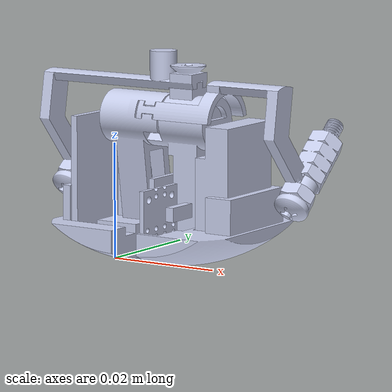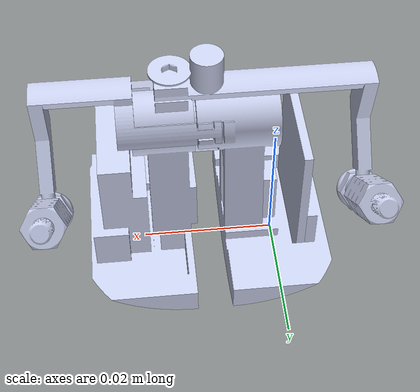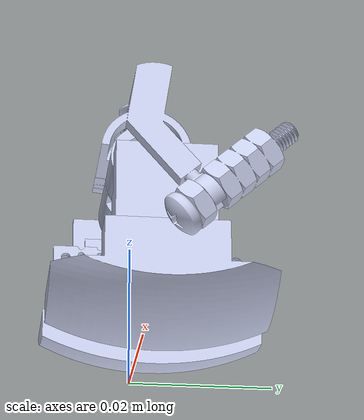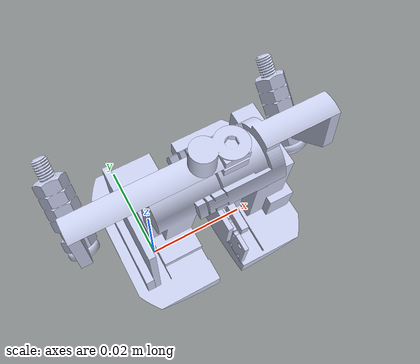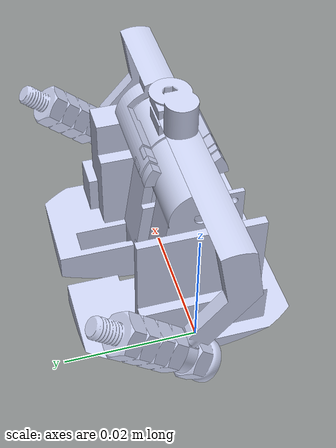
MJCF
<mujoco model="onshape">
    <compiler angle="radian" />

    <asset>
        <mesh name="driver" file="driver.stl" inertia="exact" />
        <mesh name="hip_motor" file="hip_motor.stl" inertia="exact" />
        <mesh name="hand_weight" file="hand_weight.stl" inertia="exact" />
        <mesh name="l_arm" file="l_arm.stl" inertia="exact" />
        <mesh name="battery" file="battery.stl" inertia="exact" />
        <mesh name="r_leg" file="r_leg2.stl" inertia="exact" />
        <mesh name="r_arm" file="r_arm.stl" inertia="exact" />
        <mesh name="mcu" file="mcu.stl" inertia="exact" />
        <mesh name="l_leg" file="l_leg2.stl" inertia="exact" />
        <mesh name="weight" file="weight.stl" inertia="exact" />
    </asset>

    <visual>
        <global offwidth="1920" offheight="1080" />
    </visual>

    <worldbody>
        <body name="r_leg" pos="0 0 0.02496501">
            <freejoint />
            <geom mass="0.0013" pos="0.0253843 0.0156727 0.00858911" quat="1 0 0 0" type="mesh" rgba="0.796078 0.823529 0.937255 1" mesh="driver" />
            <geom mass="0.00141" pos="0.0254272 0.015691 0.00858911" quat="1 0 0 0" type="mesh" rgba="0.796078 0.823529 0.937255 1" mesh="hip_motor" />
            <geom mass="0.00248" pos="-0.003613 0.0169705 0.00694314" quat="0.707067 -0.00745631 0.536852 0.460206" type="mesh" rgba="0.796078 0.823529 0.937255 1" mesh="hand_weight" />
            <geom mass="0.00031" pos="0.0253272 0.015541 0.00858911" quat="1 0 0 0" type="mesh" rgba="0.796078 0.823529 0.937255 1" mesh="l_arm" />
            <geom mass="0.0031565" pos="0.0254272 0.015791 0.00858911" type="mesh" rgba="0.796078 0.823529 0.937255 1" mesh="battery" />
            <geom mass="0.00317" pos="0.0254272 0.015691 0.00858911" type="mesh" rgba="0.796078 0.823529 0.937255 1" mesh="r_leg" />
            <body name="l_leg" pos="0.005875 0 0" quat="0.5 0.5 0.5 0.5">
                <joint name="hip" pos="0 0 0" axis="0 0 1" range="-0.349066 0.349066" solreflimit="4e-3 1" solimplimit=".95 .99 1e-3" />
                <geom mass="0.00047" pos="0.0157485 0.00866577 0.0205022" quat="0.5 -0.5 -0.5 -0.5" type="mesh" rgba="0.796078 0.823529 0.937255 1" mesh="r_arm" />
                <geom mass="0.00359" pos="0.015691 0.00858911 -0.009375" quat="0.5 -0.5 -0.5 -0.5" type="mesh" rgba="0.796078 0.823529 0.937255 1" mesh="mcu" />
                <geom mass="0.0033" pos="0.015691 0.00858911 0.0202022" quat="0.5 -0.5 -0.5 -0.5" type="mesh" rgba="0.796078 0.823529 0.937255 1" mesh="l_leg" />
                <geom mass="0.0" pos="0.015691 0.00858911 0.0202022" quat="0.5 -0.5 -0.5 -0.5" type="mesh" rgba="0.796078 0.823529 0.937255 1" mesh="weight" />
                <geom mass="0.00248" pos="0.0168778 0.00737613 0.036162" quat="0.852459 -0.320489 0.145352 -0.386617" type="mesh" rgba="0.796078 0.823529 0.937255 1" mesh="hand_weight" />
            </body>
        </body>
    </worldbody>

    <actuator>

        <motor name="hip_joint_act" joint="hip" />
    </actuator>
</mujoco>
